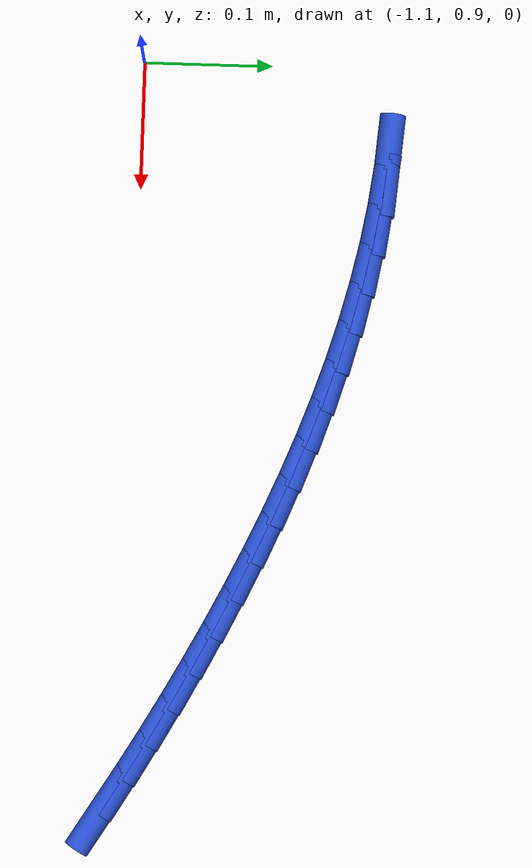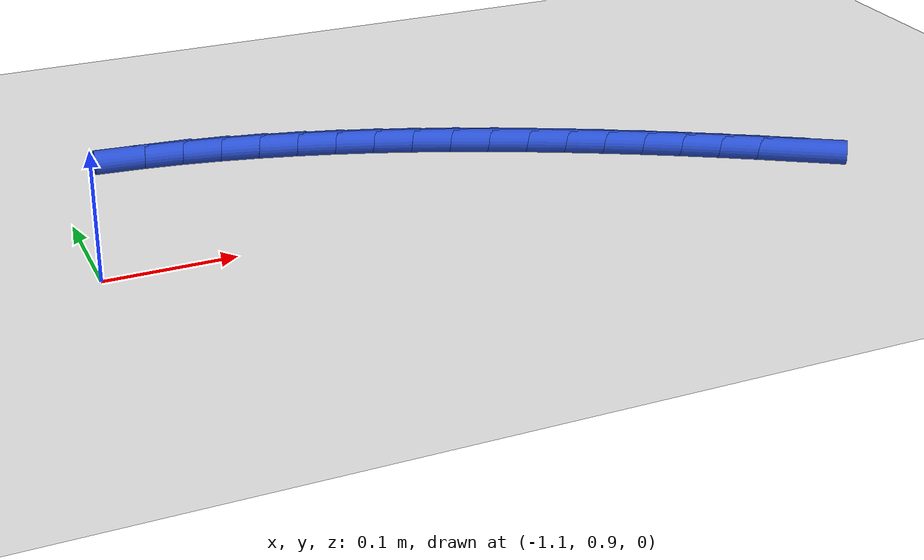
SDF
<sdf version="1.6">
 <world name="default">
  <model name="ground_plane">
   <static>1</static>
   <link name="link">
    <collision name="collision">
     <geometry><plane><normal>0 0 1</normal><size>100 100</size></plane></geometry>
     <surface><friction><ode><mu>100</mu><mu2>50</mu2></ode></friction></surface>
    </collision>
    <visual name="visual">
     <cast_shadows>0</cast_shadows>
     <geometry><plane><normal>0 0 1</normal><size>100 100</size></plane></geometry>
     <material>
      <script><uri>file://media/materials/scripts/gazebo.material</uri><name>Gazebo/WhiteGlow</name></script>
     </material>
    </visual>
   </link>
  </model>
  <model name="line">
   <link name="link_34">
    <pose>-0.5247592242215289 0.8880984543500565 0.01 0 1.57 -0.5599297688746632</pose>
    <collision name="collision">
     <geometry><cylinder><radius>0.01</radius><length>0.08</length></cylinder></geometry>
    </collision>
    <visual name="visual">
     <material>
      <script><name>Gazebo/Blue</name><uri>file://media/materials/scripts/gazebo.material</uri></script>
     </material>
     <geometry><cylinder><radius>0.01</radius><length>0.08</length></cylinder></geometry>
    </visual>
   </link>
   <link name="link_35">
    <pose>-0.5515431442143576 0.904888000204874 0.01 0 1.57 -0.5429308938090822</pose>
    <collision name="collision">
     <geometry><cylinder><radius>0.01</radius><length>0.08</length></cylinder></geometry>
    </collision>
    <visual name="visual">
     <material>
      <script><name>Gazebo/Blue</name><uri>file://media/materials/scripts/gazebo.material</uri></script>
     </material>
     <geometry><cylinder><radius>0.01</radius><length>0.08</length></cylinder></geometry>
    </visual>
   </link>
   <link name="link_36">
    <pose>-0.5786524581081697 0.9212463201993442 0.01 0 1.57 -0.5258549382365724</pose>
    <collision name="collision">
     <geometry><cylinder><radius>0.01</radius><length>0.08</length></cylinder></geometry>
    </collision>
    <visual name="visual">
     <material>
      <script><name>Gazebo/Blue</name><uri>file://media/materials/scripts/gazebo.material</uri></script>
     </material>
     <geometry><cylinder><radius>0.01</radius><length>0.08</length></cylinder></geometry>
    </visual>
   </link>
   <link name="link_37">
    <pose>-0.606103084015655 0.9371776317377031 0.01 0 1.57 -0.5087378634928827</pose>
    <collision name="collision">
     <geometry><cylinder><radius>0.01</radius><length>0.08</length></cylinder></geometry>
    </collision>
    <visual name="visual">
     <material>
      <script><name>Gazebo/Blue</name><uri>file://media/materials/scripts/gazebo.material</uri></script>
     </material>
     <geometry><cylinder><radius>0.01</radius><length>0.08</length></cylinder></geometry>
    </visual>
   </link>
   <link name="link_38">
    <pose>-0.6339109400495029 0.9526861522241856 0.01 0 1.57 -0.4916105940726589</pose>
    <collision name="collision">
     <geometry><cylinder><radius>0.01</radius><length>0.08</length></cylinder></geometry>
    </collision>
    <visual name="visual">
     <material>
      <script><name>Gazebo/Blue</name><uri>file://media/materials/scripts/gazebo.material</uri></script>
     </material>
     <geometry><cylinder><radius>0.01</radius><length>0.08</length></cylinder></geometry>
    </visual>
   </link>
   <link name="link_39">
    <pose>-0.6620918290638366 0.9677758555477987 0.01 0 1.57 -0.47391634378354275</pose>
    <collision name="collision">
     <geometry><cylinder><radius>0.01</radius><length>0.08</length></cylinder></geometry>
    </collision>
    <visual name="visual">
     <material>
      <script><name>Gazebo/Blue</name><uri>file://media/materials/scripts/gazebo.material</uri></script>
     </material>
     <geometry><cylinder><radius>0.01</radius><length>0.08</length></cylinder></geometry>
    </visual>
   </link>
   <link name="link_40">
    <pose>-0.6906481944856637 0.9824224901555072 0.01 0 1.57 -0.454496837106858</pose>
    <collision name="collision">
     <geometry><cylinder><radius>0.01</radius><length>0.08</length></cylinder></geometry>
    </collision>
    <visual name="visual">
     <material>
      <script><name>Gazebo/Blue</name><uri>file://media/materials/scripts/gazebo.material</uri></script>
     </material>
     <geometry><cylinder><radius>0.01</radius><length>0.08</length></cylinder></geometry>
    </visual>
   </link>
   <link name="link_41">
    <pose>-0.7195568435495912 0.9965476410293027 0.01 0 1.57 -0.43314401409990966</pose>
    <collision name="collision">
     <geometry><cylinder><radius>0.01</radius><length>0.08</length></cylinder></geometry>
    </collision>
    <visual name="visual">
     <material>
      <script><name>Gazebo/Blue</name><uri>file://media/materials/scripts/gazebo.material</uri></script>
     </material>
     <geometry><cylinder><radius>0.01</radius><length>0.08</length></cylinder></geometry>
    </visual>
   </link>
   <link name="link_42">
    <pose>-0.7487916808364614 1.0100667605015594 0.01 0 1.57 -0.4097646911040185</pose>
    <collision name="collision">
     <geometry><cylinder><radius>0.01</radius><length>0.08</length></cylinder></geometry>
    </collision>
    <visual name="visual">
     <material>
      <script><name>Gazebo/Blue</name><uri>file://media/materials/scripts/gazebo.material</uri></script>
     </material>
     <geometry><cylinder><radius>0.01</radius><length>0.08</length></cylinder></geometry>
    </visual>
   </link>
   <link name="link_43">
    <pose>-0.7783266109271172 1.0228953009046506 0.01 0 1.57 -0.384255755379786</pose>
    <collision name="collision">
     <geometry><cylinder><radius>0.01</radius><length>0.08</length></cylinder></geometry>
    </collision>
    <visual name="visual">
     <material>
      <script><name>Gazebo/Blue</name><uri>file://media/materials/scripts/gazebo.material</uri></script>
     </material>
     <geometry><cylinder><radius>0.01</radius><length>0.08</length></cylinder></geometry>
    </visual>
   </link>
   <link name="link_44">
    <pose>-0.8081355384024014 1.034948714570951 0.01 0 1.57 -0.35650610102212865</pose>
    <collision name="collision">
     <geometry><cylinder><radius>0.01</radius><length>0.08</length></cylinder></geometry>
    </collision>
    <visual name="visual">
     <material>
      <script><name>Gazebo/Blue</name><uri>file://media/materials/scripts/gazebo.material</uri></script>
     </material>
     <geometry><cylinder><radius>0.01</radius><length>0.08</length></cylinder></geometry>
    </visual>
   </link>
   <link name="link_45">
    <pose>-0.8381923678431558 1.0461424538328332 0.01 0 1.57 -0.32639921860090804</pose>
    <collision name="collision">
     <geometry><cylinder><radius>0.01</radius><length>0.08</length></cylinder></geometry>
    </collision>
    <visual name="visual">
     <material>
      <script><name>Gazebo/Blue</name><uri>file://media/materials/scripts/gazebo.material</uri></script>
     </material>
     <geometry><cylinder><radius>0.01</radius><length>0.08</length></cylinder></geometry>
    </visual>
   </link>
   <link name="link_46">
    <pose>-0.868471003830224 1.0563919710226721 0.01 0 1.57 -0.29381665675163215</pose>
    <collision name="collision">
     <geometry><cylinder><radius>0.01</radius><length>0.08</length></cylinder></geometry>
    </collision>
    <visual name="visual">
     <material>
      <script><name>Gazebo/Blue</name><uri>file://media/materials/scripts/gazebo.material</uri></script>
     </material>
     <geometry><cylinder><radius>0.01</radius><length>0.08</length></cylinder></geometry>
    </visual>
   </link>
   <link name="link_47">
    <pose>-0.8989453509444473 1.0656127184728403 0.01 0 1.57 -0.25864258550777436</pose>
    <collision name="collision">
     <geometry><cylinder><radius>0.01</radius><length>0.08</length></cylinder></geometry>
    </collision>
    <visual name="visual">
     <material>
      <script><name>Gazebo/Blue</name><uri>file://media/materials/scripts/gazebo.material</uri></script>
     </material>
     <geometry><cylinder><radius>0.01</radius><length>0.08</length></cylinder></geometry>
    </visual>
   </link>
   <link name="link_48">
    <pose>-0.9295893137666692 1.0737201485157126 0.01 0 1.57 -0.22076968146013215</pose>
    <collision name="collision">
     <geometry><cylinder><radius>0.01</radius><length>0.08</length></cylinder></geometry>
    </collision>
    <visual name="visual">
     <material>
      <script><name>Gazebo/Blue</name><uri>file://media/materials/scripts/gazebo.material</uri></script>
     </material>
     <geometry><cylinder><radius>0.01</radius><length>0.08</length></cylinder></geometry>
    </visual>
   </link>
   <link name="link_49">
    <pose>-0.9603767968777323 1.0806297134836629 0.01 0 1.57 -0.1801065078164533</pose>
    <collision name="collision">
     <geometry><cylinder><radius>0.01</radius><length>0.08</length></cylinder></geometry>
    </collision>
    <visual name="visual">
     <material>
      <script><name>Gazebo/Blue</name><uri>file://media/materials/scripts/gazebo.material</uri></script>
     </material>
     <geometry><cylinder><radius>0.01</radius><length>0.08</length></cylinder></geometry>
    </visual>
   </link>
   <link name="link_50">
    <pose>-0.9912817048584782 1.0862568657090639 0.01 0 1.57 -0.13658645833084948</pose>
    <collision name="collision">
     <geometry><cylinder><radius>0.01</radius><length>0.08</length></cylinder></geometry>
    </collision>
    <visual name="visual">
     <material>
      <script><name>Gazebo/Blue</name><uri>file://media/materials/scripts/gazebo.material</uri></script>
     </material>
     <geometry><cylinder><radius>0.01</radius><length>0.08</length></cylinder></geometry>
    </visual>
   </link>
   <link name="link_51">
    <pose>-1.0222779422897503 1.0905170575242904 0.01 0 1.57 -0.09030563473771248</pose>
    <collision name="collision">
     <geometry><cylinder><radius>0.01</radius><length>0.08</length></cylinder></geometry>
    </collision>
    <visual name="visual">
     <material>
      <script><name>Gazebo/Blue</name><uri>file://media/materials/scripts/gazebo.material</uri></script>
     </material>
     <geometry><cylinder><radius>0.01</radius><length>0.08</length></cylinder></geometry>
    </visual>
   </link>
  </model>
 </world>
</sdf>
